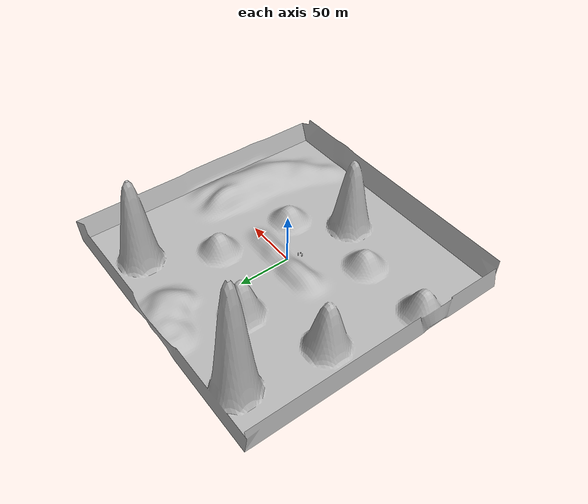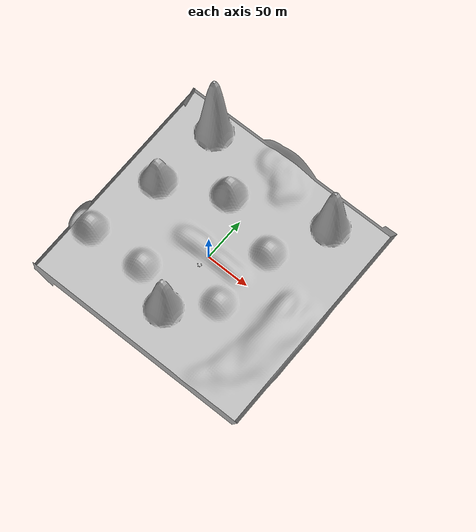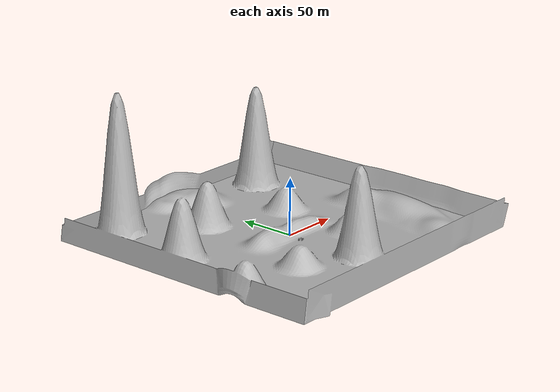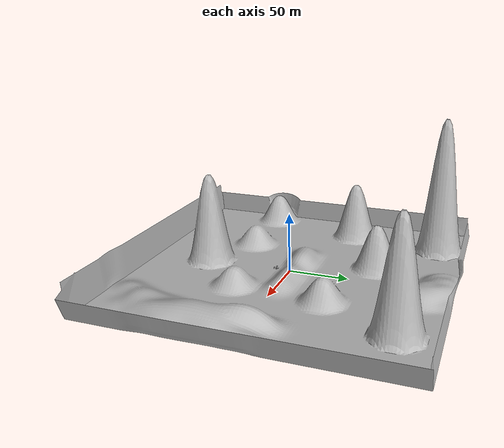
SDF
<sdf version='1.10'>
  <world name='empty'>
    <physics name='1ms' type='ignored'>
      <max_step_size>0.001</max_step_size>
      <real_time_factor>1</real_time_factor>
      <real_time_update_rate>1000</real_time_update_rate>
    </physics>
    <plugin name='gz::sim::systems::Physics' filename='gz-sim-physics-system'/>
    <plugin name='gz::sim::systems::UserCommands' filename='gz-sim-user-commands-system'/>
    <plugin name='gz::sim::systems::SceneBroadcaster' filename='gz-sim-scene-broadcaster-system'/>

    <scene>
      <grid>false</grid>
      <ambient>0.400000006 0.400000006 0.400000006 1</ambient>
      <background>0.699999988 0.699999988 0.699999988 1</background>
      <shadows>true</shadows>
    </scene>
    <gravity>0 0 -9.8000000000000007</gravity>
    <magnetic_field>5.5644999999999998e-06 2.2875799999999999e-05 -4.2388400000000002e-05</magnetic_field>
    <atmosphere type='adiabatic'/>
    <model name='WorldEnvirement'>
      <static>true</static>
      <pose>0 0 0 0 0 0</pose>
      <link name='link'>
        <collision name='collision'>
          <geometry>
            <mesh>
              <scale>20 20 20</scale>
              <uri>file:///home/ihackerubuntu/ProjectFiles/Practice/Practice_ROS2/ros2_ws_2/install/robot_lidar_sensor/share/robot_lidar_sensor/worlds/wld.dae</uri>
            </mesh>
          </geometry>
        </collision>
        <visual name='visual'>
          <geometry>
            <mesh>
              <scale>20 20 20</scale>
              <uri>file:///home/ihackerubuntu/ProjectFiles/Practice/Practice_ROS2/ros2_ws_2/install/robot_lidar_sensor/share/robot_lidar_sensor/worlds/wld.dae</uri>
            </mesh>
          </geometry>
        </visual>
        <pose>0 0 0 0 0 0</pose>
        <inertial>
          <pose>0 0 0 0 0 0</pose>
          <mass>1</mass>
          <inertia>
            <ixx>1</ixx>
            <ixy>0</ixy>
            <ixz>0</ixz>
            <iyy>1</iyy>
            <iyz>0</iyz>
            <izz>1</izz>
          </inertia>
        </inertial>
        <enable_wind>false</enable_wind>
      </link>
      <self_collide>false</self_collide>
    </model>
    <model name='cone'>
      <pose>-2.2830070507002445 -14.569055451277096 0.49999999864658146 1.1733106939948298e-09 -1.3305319730530877e-08 -6.1935258366664745e-06</pose>
      <link name='cone_link'>
        <inertial>
          <inertia>
            <ixx>0.074999999999999997</ixx>
            <ixy>0</ixy>
            <ixz>0</ixz>
            <iyy>0.074999999999999997</iyy>
            <iyz>0</iyz>
            <izz>0.074999999999999997</izz>
          </inertia>
          <mass>1</mass>
          <pose>0 0 0 0 0 0</pose>
        </inertial>
        <collision name='cone_collision'>
          <geometry>
            <cone>
              <radius>0.5</radius>
              <length>1</length>
            </cone>
          </geometry>
          <surface>
            <friction>
              <ode/>
            </friction>
            <bounce/>
            <contact/>
          </surface>
        </collision>
        <visual name='cone_visual'>
          <geometry>
            <cone>
              <radius>0.5</radius>
              <length>1</length>
            </cone>
          </geometry>
          <material>
            <ambient>0.300000012 0.300000012 0.300000012 1</ambient>
            <diffuse>0.699999988 0.699999988 0.699999988 1</diffuse>
            <specular>1 1 1 1</specular>
          </material>
        </visual>
        <pose>0 0 0 0 0 0</pose>
        <enable_wind>false</enable_wind>
      </link>
      <static>false</static>
      <self_collide>false</self_collide>
    </model>
    <model name='box'>
      <pose>-4.1631665997925822 -12.968798013551012 0.50226914664777289 0.0032126774707628121 -1.976619725668204e-09 -1.4562554259493926e-07</pose>
      <link name='box_link'>
        <inertial>
          <inertia>
            <ixx>0.16666</ixx>
            <ixy>0</ixy>
            <ixz>0</ixz>
            <iyy>0.16666</iyy>
            <iyz>0</iyz>
            <izz>0.16666</izz>
          </inertia>
          <mass>1</mass>
          <pose>0 0 0 0 0 0</pose>
        </inertial>
        <collision name='box_collision'>
          <geometry>
            <box>
              <size>1 1 1</size>
            </box>
          </geometry>
          <surface>
            <friction>
              <ode/>
            </friction>
            <bounce/>
            <contact/>
          </surface>
        </collision>
        <visual name='box_visual'>
          <geometry>
            <box>
              <size>1 1 1</size>
            </box>
          </geometry>
          <material>
            <ambient>0.300000012 0.300000012 0.300000012 1</ambient>
            <diffuse>0.699999988 0.699999988 0.699999988 1</diffuse>
            <specular>1 1 1 1</specular>
          </material>
        </visual>
        <pose>0 0 0 0 0 0</pose>
        <enable_wind>false</enable_wind>
      </link>
      <static>false</static>
      <self_collide>false</self_collide>
    </model>
    <model name='cylinder'>
      <pose>-0.051460848324932779 -11.96548790858961 0.50161119886491878 0.001141961187814528 -0.00037619303488130887 -2.0213709983737973e-07</pose>
      <link name='cylinder_link'>
        <inertial>
          <inertia>
            <ixx>0.14580000000000001</ixx>
            <ixy>0</ixy>
            <ixz>0</ixz>
            <iyy>0.14580000000000001</iyy>
            <iyz>0</iyz>
            <izz>0.125</izz>
          </inertia>
          <mass>1</mass>
          <pose>0 0 0 0 0 0</pose>
        </inertial>
        <collision name='cylinder_collision'>
          <geometry>
            <cylinder>
              <radius>0.5</radius>
              <length>1</length>
            </cylinder>
          </geometry>
          <surface>
            <friction>
              <ode/>
            </friction>
            <bounce/>
            <contact/>
          </surface>
        </collision>
        <visual name='cylinder_visual'>
          <geometry>
            <cylinder>
              <radius>0.5</radius>
              <length>1</length>
            </cylinder>
          </geometry>
          <material>
            <ambient>0.300000012 0.300000012 0.300000012 1</ambient>
            <diffuse>0.699999988 0.699999988 0.699999988 1</diffuse>
            <specular>1 1 1 1</specular>
          </material>
        </visual>
        <pose>0 0 0 0 0 0</pose>
        <enable_wind>false</enable_wind>
      </link>
      <static>false</static>
      <self_collide>false</self_collide>
    </model>
    <model name='cone_0'>
      <pose>-1.3503275342737358 -10.884024793338245 0.54899614837539423 0.099382282989611964 0.0030860217014515344 0.0065839393533241308</pose>
      <link name='cone_link'>
        <inertial>
          <inertia>
            <ixx>0.074999999999999997</ixx>
            <ixy>0</ixy>
            <ixz>0</ixz>
            <iyy>0.074999999999999997</iyy>
            <iyz>0</iyz>
            <izz>0.074999999999999997</izz>
          </inertia>
          <mass>1</mass>
          <pose>0 0 0 0 0 0</pose>
        </inertial>
        <collision name='cone_collision'>
          <geometry>
            <cone>
              <radius>0.5</radius>
              <length>1</length>
            </cone>
          </geometry>
          <surface>
            <friction>
              <ode/>
            </friction>
            <bounce/>
            <contact/>
          </surface>
        </collision>
        <visual name='cone_visual'>
          <geometry>
            <cone>
              <radius>0.5</radius>
              <length>1</length>
            </cone>
          </geometry>
          <material>
            <ambient>0.300000012 0.300000012 0.300000012 1</ambient>
            <diffuse>0.699999988 0.699999988 0.699999988 1</diffuse>
            <specular>1 1 1 1</specular>
          </material>
        </visual>
        <pose>0 0 0 0 0 0</pose>
        <enable_wind>false</enable_wind>
      </link>
      <static>false</static>
      <self_collide>false</self_collide>
    </model>
    <model name='cylinder_0'>
      <pose>-0.66542883711201095 -14.268911561374132 0.49999942707251221 6.5508626393274024e-11 -6.5506888209547935e-11 -1.8879659201444592e-21</pose>
      <link name='cylinder_link'>
        <inertial>
          <inertia>
            <ixx>0.14580000000000001</ixx>
            <ixy>0</ixy>
            <ixz>0</ixz>
            <iyy>0.14580000000000001</iyy>
            <iyz>0</iyz>
            <izz>0.125</izz>
          </inertia>
          <mass>1</mass>
          <pose>0 0 0 0 0 0</pose>
        </inertial>
        <collision name='cylinder_collision'>
          <geometry>
            <cylinder>
              <radius>0.5</radius>
              <length>1</length>
            </cylinder>
          </geometry>
          <surface>
            <friction>
              <ode/>
            </friction>
            <bounce/>
            <contact/>
          </surface>
        </collision>
        <visual name='cylinder_visual'>
          <geometry>
            <cylinder>
              <radius>0.5</radius>
              <length>1</length>
            </cylinder>
          </geometry>
          <material>
            <ambient>0.300000012 0.300000012 0.300000012 1</ambient>
            <diffuse>0.699999988 0.699999988 0.699999988 1</diffuse>
            <specular>1 1 1 1</specular>
          </material>
        </visual>
        <pose>0 0 0 0 0 0</pose>
        <enable_wind>false</enable_wind>
      </link>
      <static>false</static>
      <self_collide>false</self_collide>
    </model>
    <light name='sun' type='directional'>
      <pose>0 0 100 0 0 0</pose>
      <cast_shadows>true</cast_shadows>
      <intensity>1</intensity>
      <direction>0 1 1</direction>
      <diffuse>0.800000012 0.800000012 0.800000012 1</diffuse>
      <specular>0.100001 0.100001 0.100001 1</specular>
      <attenuation>
        <range>1000</range>
        <linear>1</linear>
        <constant>0.90000000000000002</constant>
        <quadratic>0.001</quadratic>
      </attenuation>
      <spot>
        <inner_angle>0</inner_angle>
        <outer_angle>0</outer_angle>
        <falloff>0</falloff>
      </spot>
    </light>
  </world>
</sdf>
